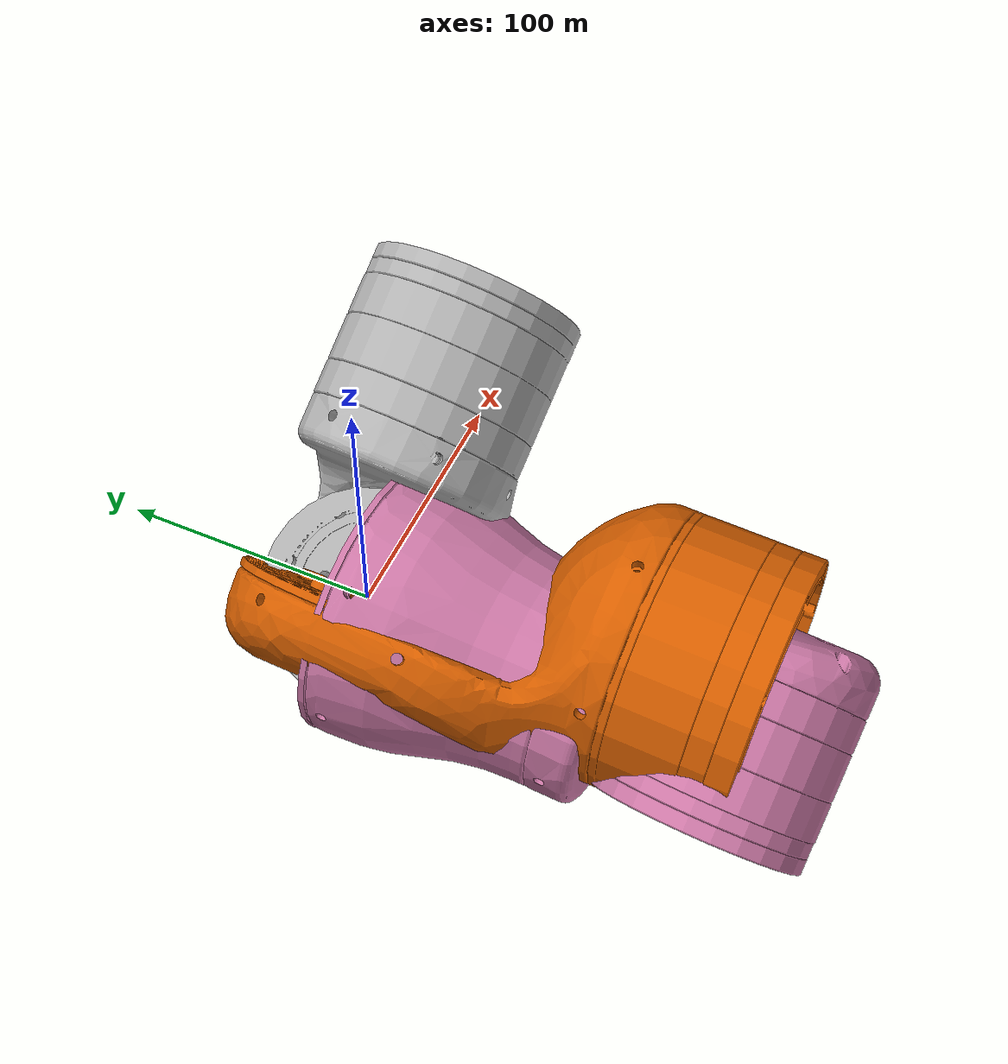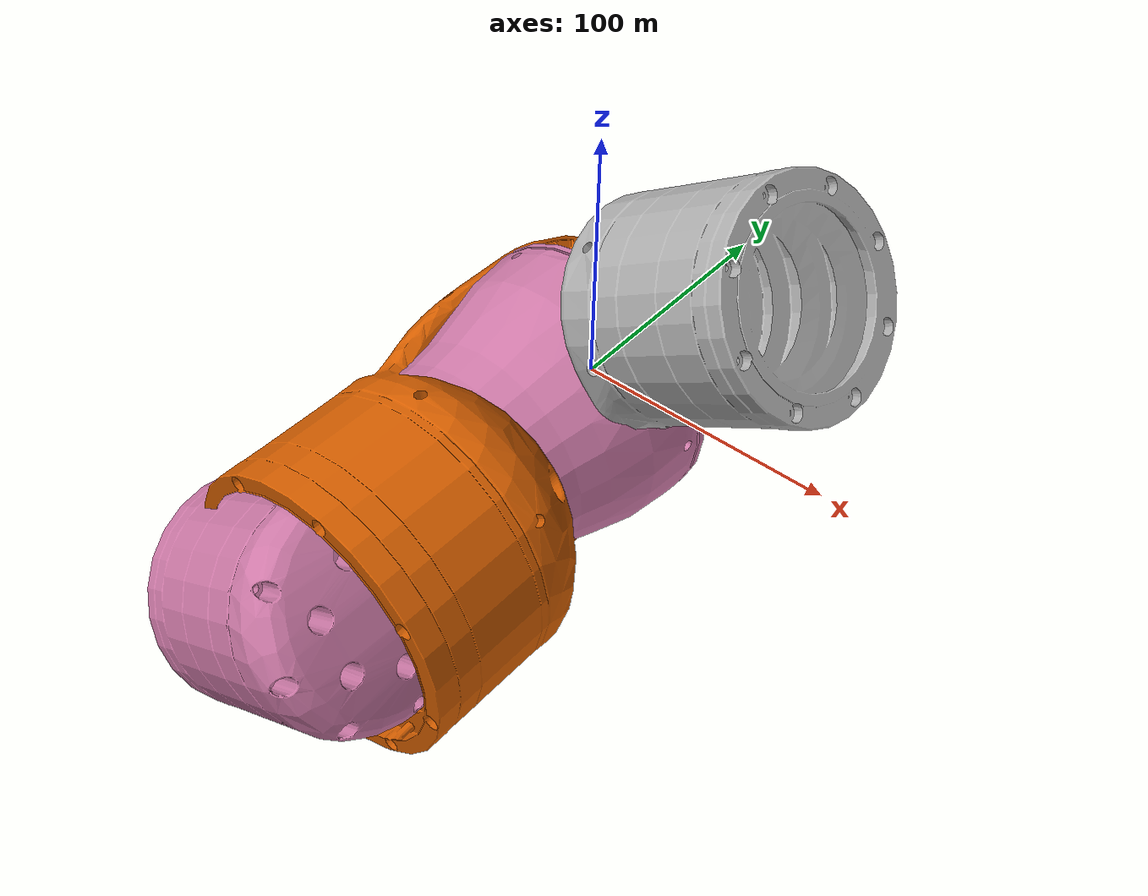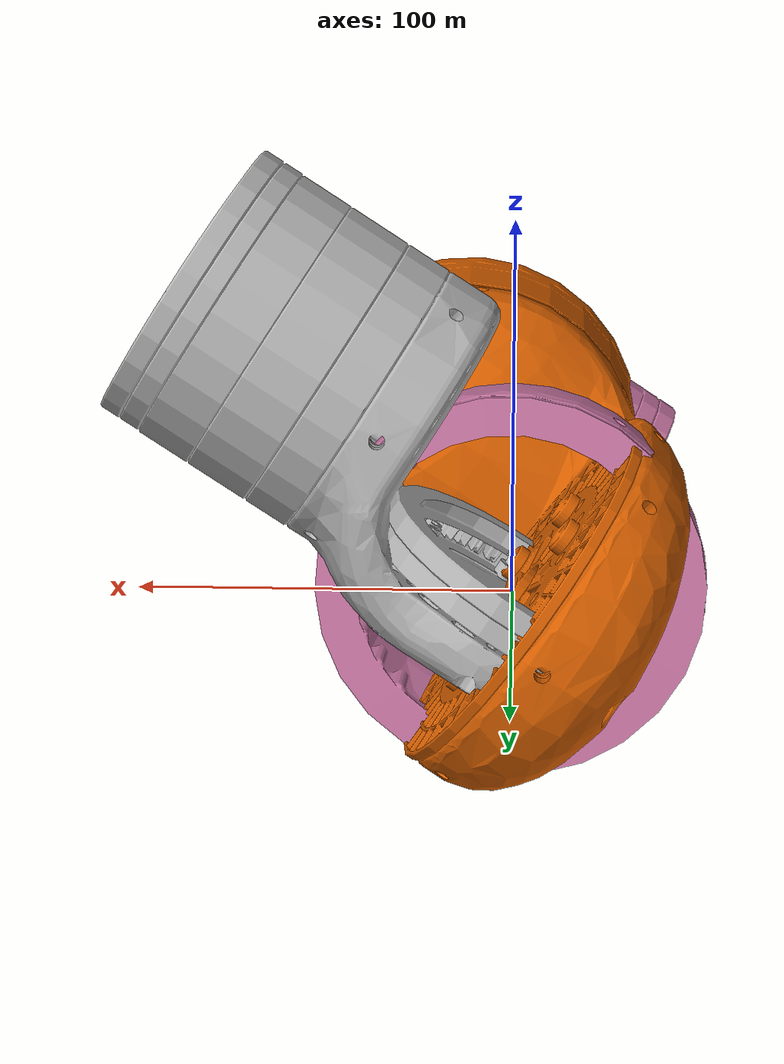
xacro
<?xml version="1.0"?>
<robot xmlns:xacro="http://www.ros.org/wiki/xacro" name="igus_rebel_mod">

	<!-- Controller settings, only enable a single one in the launch file -->
	<xacro:arg name="hardware_protocol" default="cri" />

	<!-- Gripper selection -->
	<xacro:arg name="gripper" default="none" />

	<!-- Include and call rebel macro -->
	<xacro:include filename="$(find igus_rebel_description_ros2)/urdf/igus_rebel_mod.description.xacro" />
	<xacro:igus_rebel_mod_description hardware_protocol="$(arg hardware_protocol)" />

	<!-- controller macro -->
	<xacro:include filename="$(find igus_rebel_description_ros2)/urdf/igus_rebel.control.xacro" />
	<xacro:igus_rebel_control hardware_protocol="$(arg hardware_protocol)"/>

	<!-- Add world link -->
	<link name="world" />
	<joint name="world_to_base" type="fixed">
		<parent link="world" />
		<child link="base_link" />
		<origin xyz="0.0 0.0 0.0" rpy="0.0 0.0 0.0" />
	</joint>

	<!-- Grippers -->

</robot>

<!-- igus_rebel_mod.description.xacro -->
<robot xmlns:xacro="http://www.ros.org/wiki/xacro" name="igus_rebel_mod">

	<xacro:macro name="igus_rebel_mod_description" params="hardware_protocol">

		<link name="base_link">
			<visual>
				<geometry>
					<mesh filename="file://$(find igus_rebel_description_ros2)/meshes/robolink_rebel/Robolink_RebeL_000.dae" />
				</geometry>
			</visual>
			<collision>
				<geometry>
					<mesh filename="file://$(find igus_rebel_description_ros2)/meshes/robolink_rebel/Robolink_RebeL_000.dae" />
				</geometry>
			</collision>
			<inertial>
				<mass value="1.0" />
				<inertia ixx="1.0" iyy="1.0" izz="1.0" ixy="0.0" ixz="0.0" iyz="0.0" />
			</inertial>
		</link>

		<joint name="joint1" type="revolute">
			<parent link="base_link" />
			<child link="link_1" />
			<origin rpy="0.0 0.0 ${pi}" xyz="0.0 0.0 0.126" />
			<axis xyz="0 0 1" />
			<limit effort="330.0" lower="${-pi*179/180}" upper="${pi*179/180}" velocity="${pi*45/180}" />
			<dynamics damping="0.0" friction="0.0" />
		</joint>

		<link name="link_1">
			<visual>
				<geometry>
					<mesh filename="file://$(find igus_rebel_description_ros2)/meshes/robolink_rebel/Robolink_RebeL_001.dae" />
				</geometry>
				<origin rpy="0.0 0.0 ${pi}" xyz="0.0 0.0 -0.0537" />
			</visual>
			<collision>
				<geometry>
					<mesh filename="file://$(find igus_rebel_description_ros2)/meshes/robolink_rebel/Robolink_RebeL_001.dae" />
				</geometry>
				<origin rpy="0.0 0.0 ${pi}" xyz="0.0 0.0 -0.0537" />
			</collision>
			<inertial>
				<mass value="0.1" />
				<inertia ixx="0.03" iyy="0.03" izz="0.03" ixy="0.0" ixz="0.0" iyz="0.0" />
			</inertial>
		</link>

		<joint name="joint2" type="revolute">
			<parent link="link_1" />
			<child link="link_2" />
			<origin rpy="0.0 0.0 0.0" xyz="0.0 0.025 0.153" />
			<axis xyz="0 -1 0" />
			<limit effort="330.0" lower="${-pi*11/18}" upper="${pi*11/18}" velocity="${pi*45/180}" />
			<dynamics damping="0.0" friction="0.0" />
		</joint>

		<link name="link_2">
			<visual>
				<geometry>
					<mesh filename="file://$(find igus_rebel_description_ros2)/meshes/robolink_rebel/Robolink_RebeL_002_0.dae" />
				</geometry>
				<origin rpy="-1.5707 0.0 0.0" xyz="0.0 -0.005 -0.00625" />
			</visual>
			<collision>
				<geometry>
					<mesh filename="file://$(find igus_rebel_description_ros2)/meshes/robolink_rebel/Robolink_RebeL_002_0.dae" />
				</geometry>
				<origin rpy="-1.5707 0.0 0.0" xyz="0.0 -0.005 -0.00625" />
			</collision>
			<inertial>
				<mass value="0.1" />
				<inertia ixx="0.03" iyy="0.03" izz="0.03" ixy="0.0" ixz="0.0" iyz="0.0" />
			</inertial>
		</link>

		<joint name="joint_fixed_1" type="fixed">
			<parent link="link_2" />
			<child link="link_3" />
			<origin rpy="0.0 0.0 0.0" xyz="0.0 -0.025 0.1" />
			<dynamics damping="0.0" friction="0.0" />
		</joint>

		<link name="link_3">
			<visual>
				<geometry>
					<mesh filename="file://$(find igus_rebel_description_ros2)/meshes/robolink_rebel/Robolink_RebeL_002_1.dae" />
				</geometry>
				<origin rpy="0.0 0.0 ${pi}" xyz="0.0 -0.00625 -0.00625" />
			</visual>
			<collision>
				<geometry>
					<mesh filename="file://$(find igus_rebel_description_ros2)/meshes/robolink_rebel/Robolink_RebeL_002_1.dae" />
				</geometry>
				<origin rpy="0.0 0.0 ${pi}" xyz="0.0 -0.00625 -0.00625" />
			</collision>
			<inertial>
				<mass value="0.1" />
				<inertia ixx="0.03" iyy="0.03" izz="0.03" ixy="0.0" ixz="0.0" iyz="0.0" />
			</inertial>
		</link>

		<joint name="joint_fixed_2" type="fixed">
			<parent link="link_3" />
			<child link="link_4" />
			<origin rpy="0.0 -1.0 0.0" xyz="-0.035 0.003 0.055" />
			<dynamics damping="0.0" friction="0.0" />
		</joint>

		<link name="link_4">
			<visual>
				<geometry>
					<mesh filename="file://$(find igus_rebel_description_ros2)/meshes/robolink_rebel/Robolink_RebeL_002_2.dae" />
				</geometry>
				<origin rpy="0.0 0.0 ${-pi}" xyz="0.0 0.0 -0.00625" />
			</visual>
			<collision>
				<geometry>
					<mesh filename="file://$(find igus_rebel_description_ros2)/meshes/robolink_rebel/Robolink_RebeL_002_2.dae" />
				</geometry>
				<origin rpy="0.0 0.0 ${-pi}" xyz="0.0 0.0 -0.00625" />
			</collision>
			<inertial>
				<mass value="0.1" />
				<inertia ixx="0.03" iyy="0.03" izz="0.03" ixy="0.0" ixz="0.0" iyz="0.0" />
			</inertial>
		</link>

		<joint name="joint3" type="revolute">
			<parent link="link_4" />
			<child link="link_5" />
			<origin rpy="0.0 0 0.0" xyz="0.005 0.015 0.096" />
			<axis xyz="0 -1 0" />
			<limit effort="330.0" lower="${-pi*11/18}" upper="${pi*11/18}" velocity="${pi*45/180}" />
			<dynamics damping="0.0" friction="0.0" />
		</joint>

		<link name="link_5">
			<visual>
				<geometry>
					<mesh filename="file://$(find igus_rebel_description_ros2)/meshes/robolink_rebel/Robolink_RebeL_003.dae" />
				</geometry>
				<origin rpy="-1.5707 0.0 0.0" xyz="0.0 -0.008 -0.008" />
			</visual>
			<collision>
				<geometry>
					<mesh filename="file://$(find igus_rebel_description_ros2)/meshes/robolink_rebel/Robolink_RebeL_003.dae" />
				</geometry>
				<origin rpy="-1.5707 0.0 0" xyz="0.0 -0.008 -0.008" />
			</collision>
			<inertial>
				<mass value="0.1" />
				<inertia ixx="0.03" iyy="0.03" izz="0.03" ixy="0.0" ixz="0.0" iyz="0.0" />
			</inertial>
		</link>

		<joint name="joint4" type="revolute">
			<parent link="link_5" />
			<child link="link_6" />
			<origin rpy="-0.05 0.0 0.0" xyz="0.0 -0.025 0.145" />
			<axis xyz="0 0 1" />
			<limit effort="330.0" lower="${-pi*179/180}" upper="${pi*179/180}" velocity="${pi*45/180}" />
			<dynamics damping="0.0" friction="0.0" />
		</joint>

		<link name="link_6">
			<visual>
				<geometry>
					<mesh filename="file://$(find igus_rebel_description_ros2)/meshes/robolink_rebel/Robolink_RebeL_004.dae" />
				</geometry>
				<origin rpy="0.0 0.0 0.0" xyz="0.0 0.0 -0.003125" />
			</visual>
			<collision>
				<geometry>
					<mesh filename="file://$(find igus_rebel_description_ros2)/meshes/robolink_rebel/Robolink_RebeL_004.dae" />
				</geometry>
				<origin rpy="0.0 0.0 0.0" xyz="0.0 0.0 -0.003125" />
			</collision>
			<inertial>
				<mass value="0.1" />
				<inertia ixx="0.03" iyy="0.03" izz="0.03" ixy="0.0" ixz="0.0" iyz="0.0" />
			</inertial>
		</link>

		<joint name="joint5" type="revolute">
			<parent link="link_6" />
			<child link="link_7" />
			<origin rpy="0.0 0.0 0.0" xyz="0.0 0.029 0.143" />
			<axis xyz="0 -1 0" />
			<limit effort="330.0" lower="${-pi*19/36}" upper="${pi*19/36}" velocity="${pi*45/180}" />
			<dynamics damping="0.0" friction="0.0" />
		</joint>

		<link name="link_7">
			<visual>
				<geometry>
					<mesh filename="file://$(find igus_rebel_description_ros2)/meshes/robolink_rebel/Robolink_RebeL_005.dae" />
				</geometry>
				<origin rpy="0.0 1.57 -1.5707" xyz="0.0 -0.00625 0.0" />
			</visual>
			<collision>
				<geometry>
					<mesh filename="file://$(find igus_rebel_description_ros2)/meshes/robolink_rebel/Robolink_RebeL_005.dae" />
				</geometry>
				<origin rpy="0.0 1.57 -1.5707" xyz="0.0 -0.00625 0.0" />
			</collision>
			<inertial>
				<mass value="0.1" />
				<inertia ixx="0.03" iyy="0.03" izz="0.03" ixy="0.0" ixz="0.0" iyz="0.0" />
			</inertial>
		</link>

		<joint name="joint6" type="revolute">
			<parent link="link_7" />
			<child link="link_8" />
			<origin rpy="0.0 0.0 0.0" xyz="0.0 -0.029 0.1188" />
			<axis xyz="0 0 1" />
			<limit effort="330.0" lower="${-pi*179/180}" upper="${pi*179/180}" velocity="${pi*45/180}" />
			<dynamics damping="0.0" friction="0.0" />
		</joint>

		<link name="link_8">
			<visual>
				<geometry>
					<mesh filename="file://$(find igus_rebel_description_ros2)/meshes/robolink_rebel/Robolink_RebeL_006.dae" />
				</geometry>
				<origin rpy="0 -1.57 0" xyz="0.0 0.0 -0.00625" />
			</visual>
			<collision>
				<geometry>
					<mesh filename="file://$(find igus_rebel_description_ros2)/meshes/robolink_rebel/Robolink_RebeL_006.dae" />
				</geometry>
				<origin rpy="0 -1.57 0" xyz="0.0 0.0 -0.00625" />
			</collision>
			<inertial>
				<mass value="0.1" />
				<inertia ixx="0.03" iyy="0.03" izz="0.03" ixy="0.0" ixz="0.0" iyz="0.0" />
			</inertial>
		</link>

		<joint name="joint7" type="fixed">
			<parent link="link_8" />
			<child link="flange" />
			<origin rpy="0.0 ${-pi/2} 0.0" xyz="0.0 0 0.0012" />
			<axis xyz="0 0 0" />
		</joint>

		<link name="flange">
		</link>

		<joint name="flange_to_tool0" type="fixed">
			<parent link="flange" />
			<child link="tool0" />
			<origin rpy="0.0 0.0 0.0" xyz="0.0 0.0 0.0" />
			<axis xyz="0 0 0" />
		</joint>

		<link name="tool0">
			<inertial>
				<mass value="0.1" />
				<inertia ixx="0.03" ixy="0.0" ixz="0.0" iyy="0.03" iyz="0.0" izz="0.03" />
			</inertial>
		</link>

	</xacro:macro>

</robot>
